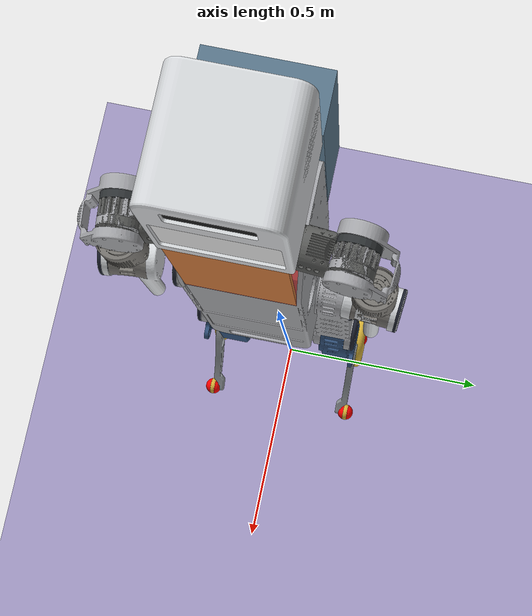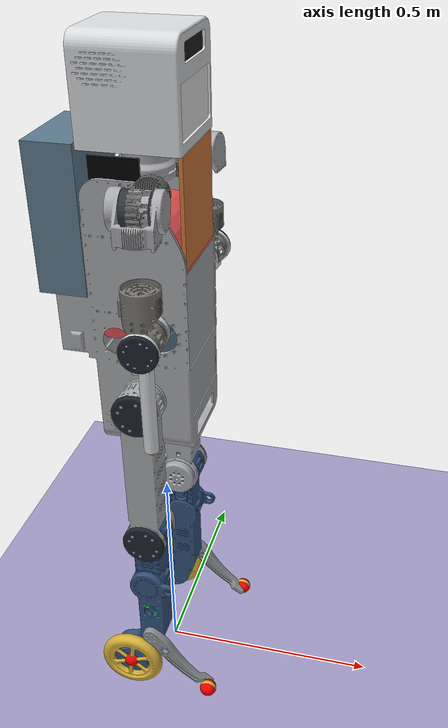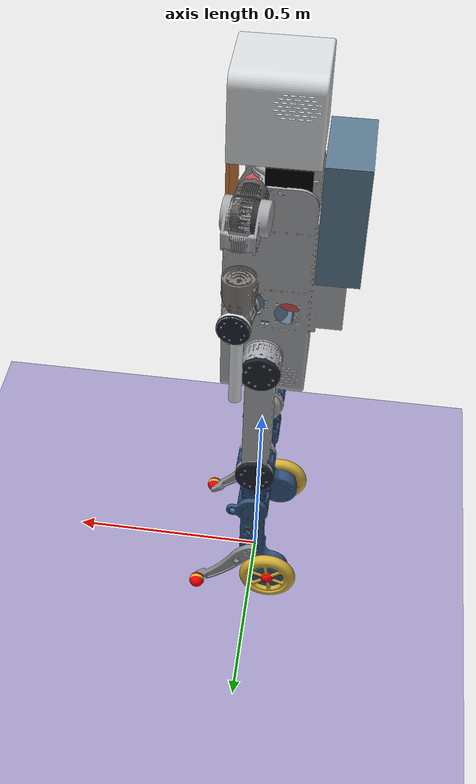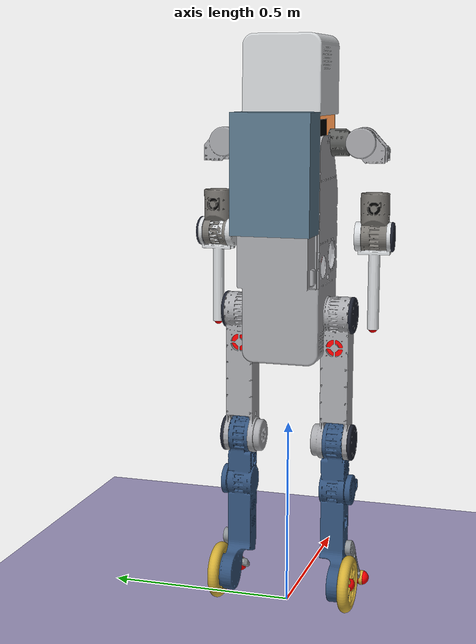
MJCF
<mujoco model="KIST MAHRU-WL with Battery">
	<compiler angle="radian" autolimits="true" meshdir="Meshes" texturedir="PNG"/>
	<option timestep="0.001" gravity="0 0 -9.81" tolerance="1e-08" cone="elliptic" jacobian="auto" solver="CG" iterations="30"/>
	<size njmax="500" nconmax="100"/>

	<visual>
		<global fovy="45" linewidth="2" glow="0.3" azimuth="135" elevation="-15"/>
		<quality shadowsize="4096" numslices="48"/>
		<map stiffness="50" stiffnessrot="100"/>
		<scale forcewidth="0.03" contactwidth="0.15" contactheight="0.1" connect="0.1" com="0.05" jointlength="0.25" jointwidth="0.05"
					 actuatorlength="0.5" actuatorwidth="0.3" framelength="1" framewidth="0.03"/>
		<rgba haze="0.6 0.8 0.9 1" force="1 0 0 0.5" com="0 0 1 1"/>
	</visual>

	<default>
		<geom contype="1" conaffinity="1" condim="3" material="MatLink"/>
		<joint limited="false" damping="2" armature="0.1" stiffness="0" frictionloss="0.2"/>
		<motor gear="1 0 0 0 0 0" ctrllimited="false" ctrlrange="-100 100"/>
	</default>

	<asset>
		<mesh name="Pelvis" file="base_link.STL"/>
		<mesh name="Torso" file="TOP.STL"/>
		<mesh name="Head" file="Head.STL"/>
		<mesh name="RA1" file="RA1.STL"/>
		<mesh name="RA2" file="RA2.STL"/>
		<mesh name="RA3" file="RA3.STL"/>
		<mesh name="RA4" file="RA4.STL"/>
		<mesh name="LA1" file="LA1.STL"/>
		<mesh name="LA2" file="LA2.STL"/>
		<mesh name="LA3" file="LA3.STL"/>
		<mesh name="LA4" file="LA4.STL"/>
		<mesh name="RL1" file="RL1.STL"/>
		<mesh name="RL2" file="RL2.STL"/>
		<mesh name="RL3" file="RL3.STL"/>
		<mesh name="RL4" file="RL4.STL"/>
		<mesh name="RW" file="RW.STL"/>
		<mesh name="LL1" file="LL1.STL"/>
		<mesh name="LL2" file="LL2.STL"/>
		<mesh name="LL3" file="LL3.STL"/>
		<mesh name="LL4" file="LL4.STL"/>
		<mesh name="LW" file="LW.STL"/>
		<mesh name="ToeWheel" file="ToeWheel.STL"/>
		<mesh name="AMCover" file="Cover.STL" scale="0.8 0.805 0.805"/>
		<mesh name="LMCover" file="Cover.STL" scale="1.005 1.005 1.005"/>

		<texture name="sky" type="skybox" builtin="gradient" width="512" height="512" rgb1="1 1 1" rgb2="0.6 0.8 1"/>
		<texture name="picdisp"  type="2d" builtin="none"    file="Face02.png"/>
		<texture name="picfloor" type="2d" builtin="none"    file="Marble-02.png"/>
		<texture name="texplane" type="2d" builtin="checker" width="512" height="512"
						 rgb1="0.8555 0.8516 0.7422" rgb2="0.4141 0.3516 0.8008" mark="edge" markrgb="1 1 1"/>

		<material name="MatGnd"   reflectance="0" specular="1" shininess="1" rgba="0 0.4 0.5 1"/>
		<material name="MatDisp"  texture="picdisp" emission="0.3" reflectance="0.1" shininess="0.5"/>
		<material name="MatLink"  reflectance="0.5" specular="1" shininess="0.3" rgba="0.5 0.5 0.5 1"/>
		<material name="MatFloor" texture="picfloor" reflectance="0.05" shininess="1" texrepeat="1 1" texuniform="true"/>
		<material name="MatPlane" texture="texplane" reflectance="0" texrepeat="1 1" texuniform="true"/>
	</asset>

	<worldbody>

		<!-- Light-->
		<light directional="true" pos=" 5 -5 5" dir="-0.5  0.5 -1" diffuse="0.3 0.3 0.3" specular="0.0 0.0 0.0" castshadow="false"/>
		<light directional="true" pos=" 5  5 5" dir="-0.5 -0.5 -1" diffuse="0.3 0.3 0.3" specular="0.0 0.0 0.0" castshadow="false"/>
		<light directional="true" pos="-5  5 5" dir=" 0.5 -0.5 -1" diffuse="0.3 0.3 0.3" specular="0.0 0.0 0.0" castshadow="false"/>
		<light directional="true" pos="-5 -5 5" dir=" 0.5  0.5 -1" diffuse="0.3 0.3 0.3" specular="0.0 0.0 0.0" castshadow="false"/>

		<!-- Ground -->
		<geom name="Ground" type="plane" pos="0 0 0" material="MatPlane" size="0 0 1" condim="3"/>

		<!-- Pelvis -->
		<body name="Pelvis" pos="0 0 0.8">
			<freejoint name ="Floating-Base"/>
			<inertial pos="-0.00067614 -5.55e-05 0.0714295" quat="0.706127 -0.0205059 -0.0182855 0.707552"
								mass="2.28058" diaginertia="0.00672353 0.00634586 0.00411024"/>
			<geom type="mesh" mesh="Pelvis" rgba="0.3555 0.4727 0.5547 1"/>	<!-- Titanium Blue -->

			<!-- Upper Body : Torso -->
			<body name="Torso" pos="0 0 0.15" euler="3.1416 0 0">
				<joint name="Torso_Y" pos="0 0 0" axis="0 0 1" limited="true" range="-0.5 0.5"/>
				<inertial pos="-0.0700627 -0.00059468 -0.24363" quat="0.697837 -0.107366 -0.0994596 0.701144"
									mass="14.6588" diaginertia="0.26711 0.217134 0.153951"/>
				<geom name="Torso" type="mesh" mesh="Torso" rgba="0.6563 0.6602 0.6758 1"/>	<!-- Metallic Silver -->
				<geom name="Head" type="mesh" mesh="Head" pos="0 0 -0.0022" rgba="0.8438 0.8555 0.8672 1"/>	<!-- Chrome Silver -->
				<geom name="Camera" type="box" pos="0.094 0 -0.526" euler="0 1.57 0" size="0.02 0.08 0.001" rgba="0.1 0.1 0.1 1"/>
				<geom name="Face" type="box" pos="0.094 0 -0.429" euler="0 1.57 -1.57" size="0.095 0.055 0.001" rgba="0.9 0.9 0.9 1" material="MatDisp"/>
				<geom name="Battery" type="box" pos="-0.154 0 -0.22" size="0.05 0.101 0.15" rgba="0.3555 0.4727 0.5547 1"/>	<!-- Titanium Blue -->

				<geom name="FU" type="box" pos="0.09505 0 -0.253" size="0.004 0.0921 0.11" rgba="0.8164 0.4727 0.2305 1"/>	<!-- Metallic Copper -->
				<geom name="FL" type="box" pos="0.062 0 -0.057" euler="0 -0.462 0" size="0.004 0.0925 0.06" rgba="0.8555 0.3047 0.3047 1"/>	<!-- Steel Red -->
				<geom type="cylinder" pos="0.009 0 -0.143" euler="1.57 0 0" size="0.09005 0.0925" rgba="0.8555 0.3047 0.3047 1"/>	<!-- Steel Red -->
				<geom name="BL" type="box" pos="-0.094 0 -0.05" size="0.005 0.0925 0.03" rgba="0.8555 0.3047 0.3047 1"/>	<!-- Steel Red -->
				<geom type="cylinder" pos="-0.06 0 -0.02" euler="1.57 0 0" size="0.039 0.0925" rgba="0.8555 0.3047 0.3047 1"/>	<!-- Steel Red -->

				<geom name="L_Fan" type="box" pos="-0.033 -0.087 -0.31" size="0.05 0.002 0.04" rgba="0 0 0 1"/>
				<geom name="R_Fan" type="box" pos="-0.033  0.087 -0.31" size="0.05 0.002 0.04" rgba="0 0 0 1"/>

				<!-- Right Arm -->
				<body name="RA1" pos="0.047556 0.17703 -0.29" euler="-1.5708 0.087266 0">
					<joint name="RArm_J1" pos="0 0 0" axis="0 0 1" limited="true" range="-3.14 3.14"/>
					<inertial pos="-0.00320914 0.00069585 -0.00962294" quat="0.711394 0.026554 0.0738763 0.698395"
										mass="1.22495" diaginertia="0.0016378 0.00141161 0.00109953"/>
					<geom type="mesh" mesh="RA1" rgba="0.3594 0.3633 0.3555 1"/>	<!-- Gunmetal -->

					<body name="RA2" pos="0 0 0" euler="3.1416 1.5708 0">
						<joint name="RArm_J2" pos="0 0 0" axis="0 0 1" limited="true" range="-1.57 1.57"/>
						<inertial pos="0.0323438 0.0796259 0.00064451" quat="0.680899 0.719991 -0.0187079 0.132814"
											mass="1.29372" diaginertia="0.0032295 0.00314406 0.0012545"/>
						<geom type="mesh" mesh="RA2" rgba="0.6563 0.6602 0.6758 1"/>	<!-- Metallic Silver -->
						<geom type="cylinder" pos="0 0 -0.025" size="0.035 0.006" rgba="0.1914 0.2070 0.2148 1"/>	<!-- Gunmetal Gray -->

						<body name="RA3" pos="0.035 0.12 0" euler="-1.5708 0 -1.5708">
							<joint name="RArm_J3" pos="0 0 0" axis="0 0 1" limited="true" range="-1.57 1.57"/>
							<inertial pos="4.877e-05 -0.0016103 0.100336" quat="0.999846 -0.0132843 0.00839672 0.00784714"
												mass="1.4234" diaginertia="0.002895 0.0025964 0.00131389"/>
							<geom type="mesh" mesh="RA3" rgba="0.4766 0.4648 0.4453 1"/>	<!-- Metallic Titanium -->
							<geom name="RE_Fan" type="box" pos="-0.026 0 0.045" size="0.002 0.018 0.018" rgba="0 0 0 1"/>

							<body name="RA4" pos="0 0 0.12" euler="1.5708 0 0">
								<joint name="RArm_J4" pos="0 0 0" axis="0 0 1" limited="true" range="-1.8 0.05"/>
								<inertial pos="0.00060544 0.0490789 -0.00543265" quat="0.725691 0.68668 0.0277101 -0.032793"
													mass="0.424992" diaginertia="0.00272971 0.00242895 0.000568368"/>
								<geom name ="RA" type="mesh" mesh="RA4" rgba="0.8438 0.8555 0.8672 1"/>	<!-- Chrome Silver -->
								<geom name ="RECover" type="mesh" mesh="AMCover" pos="0 0 -0.041" euler="0 1.57 0"
											rgba="0.1133 0.1289 0.1797 1"/>
								<site name="RArm_EE" type="sphere" pos="0 0.24 0" size="0.012" rgba="1 0 0 1"/>
							</body>
						</body>
					</body>
				</body>	<!-- End of Right Arm -->

				<!-- Left Arm -->
				<body name="LA1" pos="0.047556 -0.17703 -0.29" euler="1.5708 0.087266 0">
					<joint name="LArm_J1" pos="0 0 0" axis="0 0 1" limited="true" range="-3.14 3.14"/>
					<inertial pos="-0.00270238 -0.0005809 -0.0100052" quat="0.69356 0.0681919 0.0240117 0.716762"
										mass="1.25983" diaginertia="0.00168159 0.00143311 0.00111088"/>
					<geom type="mesh" mesh="LA1" rgba="0.3594 0.3633 0.3555 1"/>	<!-- Gunmetal -->

					<body name="LA2" pos="0 0 0" euler="0 1.5708 0">
						<joint name="LArm_J2" pos="0 0 0" axis="0 0 1" limited="true" range="-1.57 1.57"/>
						<inertial pos="-0.0323784 0.0795584 0.00101643" quat="0.677178 0.68123 -0.248368 0.125173"
											mass="1.29372" diaginertia="0.00324876 0.00310387 0.00124228"/>
						<geom type="mesh" mesh="LA2" rgba="0.6563 0.6602 0.6758 1"/>	<!-- Metallic Silver -->
						<geom type="cylinder" pos="0 0 -0.025" size="0.035 0.006" rgba="0.1914 0.2070 0.2148 1"/>	<!-- Gunmetal Gray -->

						<body name="LA3" pos="-0.035 0.12 0" euler="-1.5708 0 -1.5708">
							<joint name="LArm_J3" pos="0 0 0" axis="0 0 1" limited="true" range="-1.57 1.57"/>
							<inertial pos="-5.799e-05 0.00053346 0.0995607" quat="0.999217 0.00210167 0.00908455 -0.0384448"
												mass="1.4234" diaginertia="0.00291777 0.00266108 0.00129739"/>
							<geom type="mesh" mesh="LA3" rgba="0.4766 0.4648 0.4453 1"/>	<!-- Metallic Titanium -->
							<geom name="LE_Fan" type="box" pos="-0.026 0 0.045" size="0.002 0.018 0.018" rgba="0 0 0 1"/>

							<body name="LA4" pos="0 0 0.12" euler="-1.5708 0 0">
								<joint name="LArm_J4" pos="0 0 0" axis="0 0 1" limited="true" range="-0.05 1.8"/>
								<inertial pos="8.442e-05 -0.0504622 -0.00226729" quat="0.689636 0.724156 -0.000507048 0.000327347"
													mass="0.424992" diaginertia="0.00271653 0.00240958 0.000573146"/>
								<geom name="LA" type="mesh" mesh="LA4" rgba="0.8438 0.8555 0.8672 1"/>	<!-- Chrome Silver -->
								<geom name ="LECover" type="mesh" mesh="AMCover" pos="0 0 -0.041" euler="0 1.57 0"
											rgba="0.1133 0.1289 0.1797 1"/>
								<site name="LArm_EE" type="sphere" pos="0 -0.24 0" size="0.012" rgba="1 0 0 1"/>
							</body>
						</body>
					</body>
				</body>	<!-- End of Left Arm -->

			</body>	<!-- End of Torso -->

			<!-- Right Leg -->
			<body name="RL1" pos="0 -0.0405 0" euler="-1.5708 -1.5708 0">
				<joint name="RLeg_J1" pos="0 0 0" axis="0 0 1" limited="true" range="-0.1 1.57"/>
				<inertial pos="-0.00325492 8.807e-05 0.00943272" quat="0.70432 -0.0709841 -0.0605083 0.703728"
									mass="1.37909" diaginertia="0.00173372 0.00165486 0.00141238"/>
				<geom type="mesh" mesh="RL1" rgba="0.3594 0.3633 0.3555 1"/>	<!-- Gunmetal -->

				<body name="RL2" pos="-0.088 0 0" euler="0 1.5708 0">
					<joint name="RLeg_J2" pos="0 0 0" axis="0 0 1" limited="true" range="-1.57 0.5"/>
					<inertial pos="-5.823e-05 0.0700867 0.247412" quat="0.69211 0.72178 0.00345192 -0.00241462"
										mass="2.58606" diaginertia="0.0389232 0.0388284 0.00354663"/>
					<geom type="mesh" mesh="RL2" rgba="0.6563 0.6602 0.6758 1"/>	<!-- Metallic Silver -->
					<geom name ="RHCover" type="mesh" mesh="LMCover" pos="0 0 -0.0345" euler="0 1.57 0"
								rgba="0.1133 0.1289 0.1797 1"/>
					<geom name ="RKCover" type="mesh" mesh="LMCover" pos="0 0.34 -0.037" euler="0 1.57 0"
								rgba="0.1133 0.1289 0.1797 1"/>
					<geom name="RH_Fan" type="box" pos="-0.02 0.083 0" size="0.002 0.025 0.025" rgba="1 0 0 1"/>

					<body name="RL3" pos="0 0.34 0">
						<joint name="RLeg_J3" pos="0 0 0" axis="0 0 1" limited="true" range="0 1.7"/>
						<inertial pos="-0.00805944 0.139058 -0.00700815" quat="0.632223 0.643363 -0.344969 0.259564"
											mass="4.817" diaginertia="0.0979866 0.0951953 0.00577222"/>
						<geom type="mesh" mesh="RL3" rgba="0.1953 0.3203 0.4805 1"/>	<!-- Metallic Blue -->
						<geom name="RS_Fan" type="box" pos="0 0.22 -0.017" size="0.025 0.025 0.002" rgba="0 1 0 1"/>

						<body name="RL4" pos="0 0.292 -0.049" euler="3.1416 0 -0.77649698">
							<joint name="RLeg_J4" pos="0 0 0" axis="0 0 1" limited="true" range="-0.1 1"/>
							<inertial pos="0.0971152 -0.00115539 -0.00834587" quat="0.633054 0.29 0.656564 0.289942"
												mass="0.287805" diaginertia="0.00186745 0.00186698 5.8451e-05"/>
							<geom name="RTW" type="mesh" mesh="RL4" rgba="0.5508 0.5703 0.5859 1"/>	<!-- Dark Steel -->
							<geom name="RToeWheel" type="mesh" mesh="ToeWheel" pos="0.19678 0 0" euler ="0 1.5708 0" condim="1"
										rgba="0.8281 0.6836 0.2148 1"/>	<!-- Metallic Gold -->
							<site name="RToe" type="sphere" pos="0.19678 0 0" size="0.02" rgba="1 0 0 1"/>
						</body>

						<body name="RW" pos="-0.05 0.375 -0.049">
							<joint name="RWheel" pos="0 0 0" axis="0 0 1"/>
							<inertial pos="0 0 -0.0010293" quat="0.5 0.5 -0.5 0.5"
												mass="0.440501" diaginertia="0.00149999 0.00077736 0.00077736"/>
							<geom name="RW" type="mesh" mesh="RW" rgba="0.8281 0.6836 0.2148 1"/>	<!-- Metallic Gold -->
							<site name="RWheel_C" type="sphere" pos="0 0 0" size="0.02" rgba="1 0 0 1"/>
						</body>
					</body>
				</body>
			</body>	<!-- End of Right Leg -->

			<!-- Left Leg -->
			<body name="LL1" pos="0 0.0405 0" euler="-1.5708 -1.5708 0">
				<joint name="LLeg_J1" pos="0 0 0" axis="0 0 1" limited="true" range="-1.57 0.1"/>
				<inertial pos="0.00325492 8.807e-05 0.00943272" quat="0.70432 0.0709841 0.0605083 0.703728"
									mass="1.37909" diaginertia="0.00173372 0.00165486 0.00141238"/>
				<geom type="mesh" mesh="LL1" rgba="0.3594 0.3633 0.3555 1"/>	<!-- Gunmetal -->

				<body name="LL2" pos="0.088 0 0"  euler="3.1416 -1.5708 0">
					<joint name="LLeg_J2" pos="0 0 0" axis="0 0 1" limited="true" range="-0.5 1.57"/>
					<inertial pos="-5.823e-05 -0.0700867 0.247412" quat="0.69211 0.72178 -0.00345192 0.00241462"
										mass="2.58606" diaginertia="0.0389232 0.0388284 0.00354663"/>
					<geom type="mesh" mesh="LL2" rgba="0.6563 0.6602 0.6758 1"/>	<!-- Metallic Silver -->
					<geom name ="LHCover" type="mesh" mesh="LMCover" pos="0 0 -0.0345" euler="0 1.57 0"
								rgba="0.1133 0.1289 0.1797 1"/>
					<geom name ="LKCover" type="mesh" mesh="LMCover" pos="0 -0.34 -0.037" euler="0 1.57 0"
								rgba="0.1133 0.1289 0.1797 1"/>
					<geom name="LH_Fan" type="box" pos="-0.02 -0.083 0" size="0.002 0.025 0.025" rgba="1 0 0 1"/>

					<body name="LL3" pos="0 -0.34 0">
						<joint name="LLeg_J3" pos="0 0 0" axis="0 0 1" limited="true" range="-1.7 0"/>
						<inertial pos="-0.00805944 -0.139058 -0.00700815" quat="0.344969 0.259564 -0.632223 0.643363"
											mass="4.817" diaginertia="0.0979866 0.0951953 0.00577222"/>
						<geom type="mesh" mesh="LL3" rgba="0.1953 0.3203 0.4805 1"/>	<!-- Metallic Blue -->
						<geom name="LS_Fan" type="box" pos="0 -0.22 -0.017" size="0.025 0.025 0.002" rgba="0 1 0 1"/>

						<body name="LL4" pos="0 -0.292 -0.049" euler="3.1416 0 0.77649698">
							<joint name="LLeg_J4" pos="0 0 0" axis="0 0 1" limited="true" range="-0.1 0.1"/>
							<inertial pos="0.0971152 0.00115539 -0.00834587" quat="0.289942 0.656564 0.29 0.633054"
												mass="0.287805" diaginertia="0.00186745 0.00186698 5.8451e-05"/>
							<geom name="LTW" type="mesh" mesh="LL4" rgba="0.5508 0.5703 0.5859 1"/>	<!-- Dark Steel -->
							<geom name="LToeWheel" type="mesh" mesh="ToeWheel" pos="0.19678 0 0" euler ="0 1.5708 0" condim="1"
										rgba="0.8281 0.6836 0.2148 1"/>	<!-- Metallic Gold -->
							<site name="LToe" type="sphere" pos="0.19678 0 0" size="0.02" rgba="1 0 0 1"/>
						</body>

						<body name="LW" pos="-0.05 -0.375 -0.049" euler="3.1416 0 0">
							<joint name="LWheel" pos="0 0 0" axis="0 0 1"/>
							<inertial pos="0 0 0.0010293" quat="0.5 0.5 -0.5 0.5"
												mass="0.440501" diaginertia="0.00149999 0.00077736 0.00077736"/>
							<geom name ="LW" type="mesh" mesh="LW" rgba="0.8281 0.6836 0.2148 1"/>	<!-- Metallic Gold -->
							<site name="LWheel_C" type="sphere" pos="0 0 0" size="0.02" rgba="1 0 0 1"/>
						</body>
					</body>
				</body>
			</body>	<!-- End of Left Leg -->

		</body>	<!-- End of Pelvis -->

	</worldbody><!-- End of Base_Link! -->

	<actuator>
		<motor name="Torso-Y" ctrllimited="false" gear="1 0 0 0 0 0" joint="Torso_Y"/>

		<motor name="RLeg-J1" ctrllimited="false" gear="1 0 0 0 0 0" joint="RLeg_J1"/>
		<motor name="RLeg-J2" ctrllimited="false" gear="1 0 0 0 0 0" joint="RLeg_J2"/>
		<motor name="RLeg-J3" ctrllimited="false" gear="1 0 0 0 0 0" joint="RLeg_J3"/>
		<motor name="RLeg-J4" ctrllimited="false" gear="1 0 0 0 0 0" joint="RLeg_J4"/>
		<velocity name="R-Wheel" joint="RWheel" kv="200"/>

		<motor name="LLeg-J1" ctrllimited="false" gear="1 0 0 0 0 0" joint="LLeg_J1"/>
		<motor name="LLeg-J2" ctrllimited="false" gear="1 0 0 0 0 0" joint="LLeg_J2"/>
		<motor name="LLeg-J3" ctrllimited="false" gear="1 0 0 0 0 0" joint="LLeg_J3"/>
		<motor name="LLeg-J4" ctrllimited="false" gear="1 0 0 0 0 0" joint="LLeg_J4"/>
		<velocity name="L-Wheel" joint="LWheel" kv="200"/>

		<motor name="RArm-J1" ctrllimited="false" gear="1 0 0 0 0 0" joint="RArm_J1"/>
		<motor name="RArm-J2" ctrllimited="false" gear="1 0 0 0 0 0" joint="RArm_J2"/>
		<motor name="RArm-J3" ctrllimited="false" gear="1 0 0 0 0 0" joint="RArm_J3"/>
		<motor name="RArm-J4" ctrllimited="false" gear="1 0 0 0 0 0" joint="RArm_J4"/>

		<motor name="LArm-J1" ctrllimited="false" gear="1 0 0 0 0 0" joint="LArm_J1"/>
		<motor name="LArm-J2" ctrllimited="false" gear="1 0 0 0 0 0" joint="LArm_J2"/>
		<motor name="LArm-J3" ctrllimited="false" gear="1 0 0 0 0 0" joint="LArm_J3"/>
		<motor name="LArm-J4" ctrllimited="false" gear="1 0 0 0 0 0" joint="LArm_J4"/>
	</actuator>

</mujoco>
